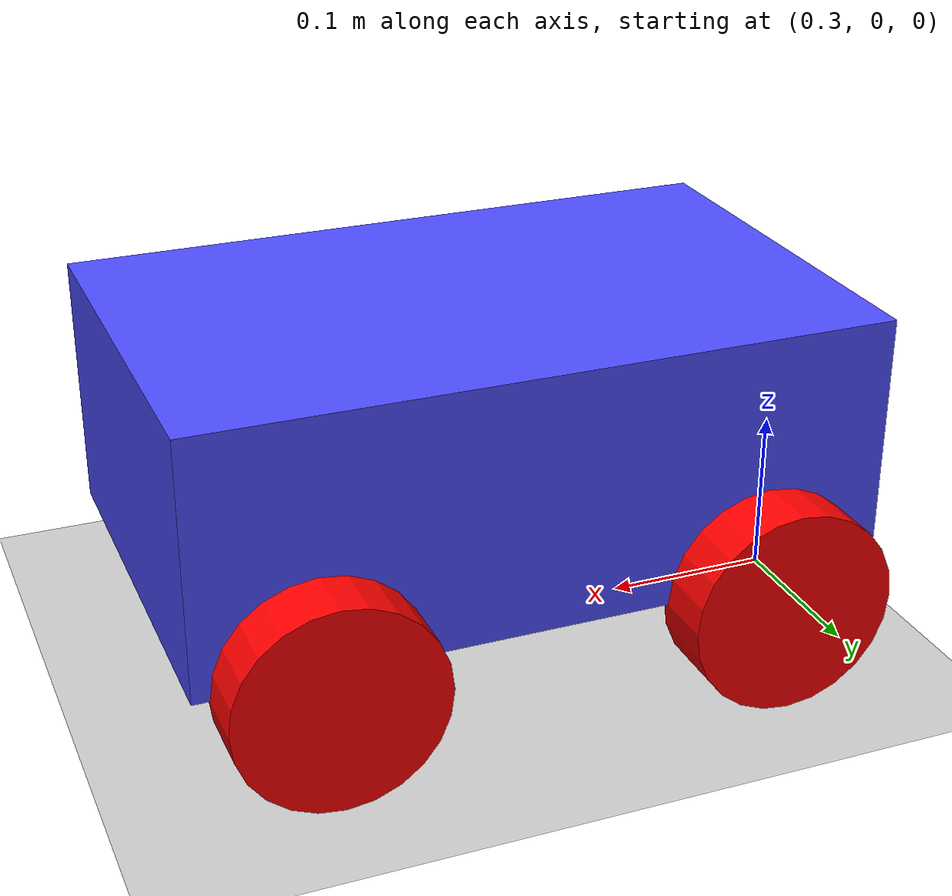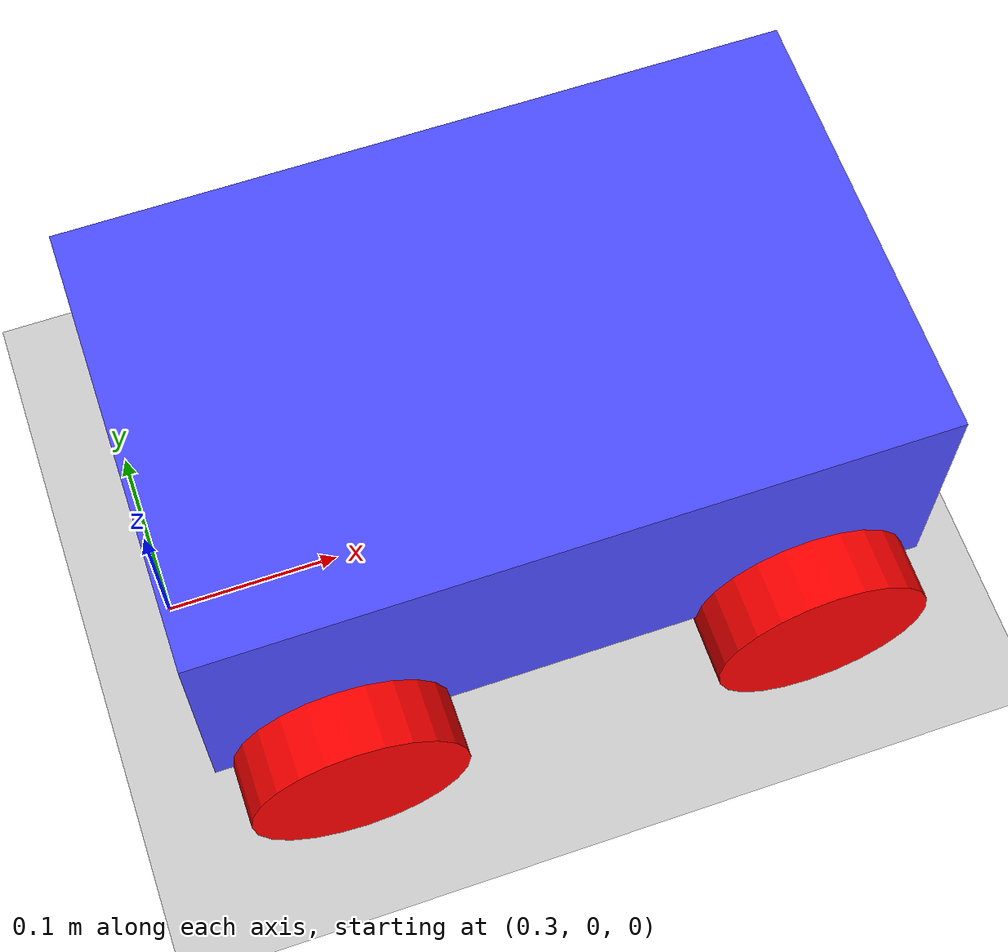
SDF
<?xml version="1.0" ?>
<sdf version="1.10">
    <world name="car_world">
        <physics type="ode">
            <max_step_size>0.001</max_step_size>
            <real_time_update_rate>1000</real_time_update_rate>
            <ode>
                <solver>
                    <iters>150</iters>
                </solver>
            </ode>
        </physics>
        <plugin
            filename="gz-sim-physics-system"
            name="gz::sim::systems::Physics">
        </plugin>
        <plugin
            filename="gz-sim-user-commands-system"
            name="gz::sim::systems::UserCommands">
        </plugin>
        <plugin
            filename="gz-sim-scene-broadcaster-system"
            name="gz::sim::systems::SceneBroadcaster">
        </plugin>

        <light type="directional" name="sun">
            <cast_shadows>true</cast_shadows>
            <pose>0 0 10 0 0 0</pose>
            <diffuse>0.8 0.8 0.8 1</diffuse>
            <specular>0.2 0.2 0.2 1</specular>
            <attenuation>
                <range>1000</range>
                <constant>0.9</constant>
                <linear>0.01</linear>
                <quadratic>0.001</quadratic>
            </attenuation>
            <direction>-0.5 0.1 -0.9</direction>
        </light>

        <model name="ground_plane">
            <static>true</static>
            <link name="link">
                <collision name="collision">
                    <geometry>
                        <plane>
                            <normal>0 0 1</normal>
                        </plane>
                    </geometry>
                </collision>
                <visual name="visual">
                    <geometry>
                        <plane>
                            <normal>0 0 1</normal>
                            <size>100 100</size>
                        </plane>
                    </geometry>
                    <material>
                        <ambient>0.8 0.8 0.8 1</ambient>
                        <diffuse>0.8 0.8 0.8 1</diffuse>
                        <specular>0.8 0.8 0.8 1</specular>
                    </material>
                </visual>
            </link>
        </model>

        <model name='arabam' canonical_link='chassis'>
            <pose relative_to='world'>0.5 0 0.14 0 0 0</pose>

            <link name='chassis'>
                <pose relative_to='__model__'>0 0 0 0 0 0</pose>
                <inertial>
                    <mass>1.5</mass>
                    <inertia>
                        <ixx>0.0146</ixx>
                        <iyy>0.0479</iyy>
                        <izz>0.0521</izz>
                        <ixy>0</ixy>
                        <ixz>0</ixz>
                        <iyz>0</iyz>
                    </inertia>
                </inertial>
                <visual name='visual'>
                    <geometry>
                        <box>
                            <size>0.4 0.25 0.15</size>
                        </box>
                    </geometry>
                    <material>
                        <ambient>0.3 0.3 1.0 1</ambient>
                        <diffuse>0.3 0.3 1.0 1</diffuse>
                    </material>
                </visual>
                <collision name='collision'>
                    <geometry>
                        <box>
                            <size>0.4 0.25 0.15</size>
                        </box>
                    </geometry>
                </collision>
            </link>

            <link name='right_wheel'>
                <pose relative_to='chassis'>0.13 -0.14 -0.075 -1.5707 0 0</pose>
                <inertial>
                    <mass>0.15</mass>
                    <inertia>
                        <ixx>0.000203</ixx>
                        <iyy>0.000203</iyy>
                        <izz>0.000338</izz>
                        <ixy>0</ixy>
                        <ixz>0</ixz>
                        <iyz>0</iyz>
                    </inertia>
                </inertial>
                <visual name='visual'>
                    <geometry>
                        <cylinder>
                            <radius>0.06</radius>
                            <length>0.04</length>
                        </cylinder>
                    </geometry>
                    <material>
                        <ambient>1.0 0.0 0.0 1</ambient>
                        <diffuse>1.0 0.0 0.0 1</diffuse>
                        <specular>1.0 0.0 0.0 1</specular>
                    </material>
                </visual>
                <collision name='collision'>
                    <geometry>
                        <cylinder>
                            <radius>0.06</radius>
                            <length>0.04</length>
                        </cylinder>
                    </geometry>
                    <surface>
                        <friction>
                            <ode>
                                <mu>1.0</mu>
                                <mu2>1.0</mu2>
                            </ode>
                        </friction>
                    </surface>
                </collision>
            </link>

            <link name='right_wheel_front'>
                <pose relative_to='chassis'>-0.13 -0.14 -0.075 -1.5707 0 0</pose>
                <inertial>
                    <mass>0.15</mass>
                    <inertia>
                        <ixx>0.000203</ixx>
                        <iyy>0.000203</iyy>
                        <izz>0.000338</izz>
                        <ixy>0</ixy>
                        <ixz>0</ixz>
                        <iyz>0</iyz>
                    </inertia>
                </inertial>
                <visual name='visual'>
                    <geometry>
                        <cylinder>
                            <radius>0.06</radius>
                            <length>0.04</length>
                        </cylinder>
                    </geometry>
                    <material>
                        <ambient>1.0 0.0 0.0 1</ambient>
                        <diffuse>1.0 0.0 0.0 1</diffuse>
                        <specular>1.0 0.0 0.0 1</specular>
                    </material>
                </visual>
                <collision name='collision'>
                    <geometry>
                        <cylinder>
                            <radius>0.06</radius>
                            <length>0.04</length>
                        </cylinder>
                    </geometry>
                    <surface>
                        <friction>
                            <ode>
                                <mu>1.0</mu>
                                <mu2>1.0</mu2>
                            </ode>
                        </friction>
                    </surface>
                </collision>
            </link>

            <link name='left_wheel'>
                <pose relative_to='chassis'>0.13 0.14 -0.075 -1.5707 0 0</pose>
                <inertial>
                    <mass>0.15</mass>
                    <inertia>
                        <ixx>0.000203</ixx>
                        <iyy>0.000203</iyy>
                        <izz>0.000338</izz>
                        <ixy>0</ixy>
                        <ixz>0</ixz>
                        <iyz>0</iyz>
                    </inertia>
                </inertial>
                <visual name='visual'>
                    <geometry>
                        <cylinder>
                            <radius>0.06</radius>
                            <length>0.04</length>
                        </cylinder>
                    </geometry>
                    <material>
                        <ambient>1.0 0.0 0.0 1</ambient>
                        <diffuse>1.0 0.0 0.0 1</diffuse>
                        <specular>1.0 0.0 0.0 1</specular>
                    </material>
                </visual>
                <collision name='collision'>
                    <geometry>
                        <cylinder>
                            <radius>0.06</radius>
                            <length>0.04</length>
                        </cylinder>
                    </geometry>
                    <surface>
                        <friction>
                            <ode>
                                <mu>1.0</mu>
                                <mu2>1.0</mu2>
                            </ode>
                        </friction>
                    </surface>
                </collision>
            </link>

            <link name='left_wheel_front'>
                <pose relative_to='chassis'>-0.13 0.14 -0.075 -1.5707 0 0</pose>
                <inertial>
                    <mass>0.15</mass>
                    <inertia>
                        <ixx>0.000203</ixx>
                        <iyy>0.000203</iyy>
                        <izz>0.000338</izz>
                        <ixy>0</ixy>
                        <ixz>0</ixz>
                        <iyz>0</iyz>
                    </inertia>
                </inertial>
                <visual name='visual'>
                    <geometry>
                        <cylinder>
                            <radius>0.06</radius>
                            <length>0.04</length>
                        </cylinder>
                    </geometry>
                    <material>
                        <ambient>1.0 0.0 0.0 1</ambient>
                        <diffuse>1.0 0.0 0.0 1</diffuse>
                        <specular>1.0 0.0 0.0 1</specular>
                    </material>
                </visual>
                <collision name='collision'>
                    <geometry>
                        <cylinder>
                            <radius>0.06</radius>
                            <length>0.04</length>
                        </cylinder>
                    </geometry>
                    <surface>
                        <friction>
                            <ode>
                                <mu>1.0</mu>
                                <mu2>1.0</mu2>
                            </ode>
                        </friction>
                    </surface>
                </collision>
            </link>

            <joint name='left_wheel_joint' type='revolute'>
                <pose relative_to='left_wheel'/>
                <parent>chassis</parent>
                <child>left_wheel</child>
                <axis>
                    <xyz expressed_in='__model__'>0 1 0</xyz>
                    <limit>
                        <lower>-1.79769e+308</lower>
                        <upper>1.79769e+308</upper>
                    </limit>
                    <dynamics>
                        <damping>0.1</damping>
                    </dynamics>
                </axis>
            </joint>

            <joint name='left_wheel_front_joint' type='revolute'>
                <pose relative_to='left_wheel_front'/>
                <parent>chassis</parent>
                <child>left_wheel_front</child>
                <axis>
                    <xyz expressed_in='__model__'>0 1 0</xyz>
                    <limit>
                        <lower>-1.79769e+308</lower>
                        <upper>1.79769e+308</upper>
                    </limit>
                    <dynamics>
                        <damping>0.1</damping>
                    </dynamics>
                </axis>
            </joint>

            <joint name='right_wheel_joint' type='revolute'>
                <pose relative_to='right_wheel'/>
                <parent>chassis</parent>
                <child>right_wheel</child>
                <axis>
                    <xyz expressed_in='__model__'>0 1 0</xyz>
                    <limit>
                        <lower>-1.79769e+308</lower>
                        <upper>1.79769e+308</upper>
                    </limit>
                    <dynamics>
                        <damping>0.1</damping>
                    </dynamics>
                </axis>
            </joint>

            <joint name='right_wheel_joint_front' type='revolute'>
                <pose relative_to='right_wheel_front'/>
                <parent>chassis</parent>
                <child>right_wheel_front</child>
                <axis>
                    <xyz expressed_in='__model__'>0 1 0</xyz>
                    <limit>
                        <lower>-1.79769e+308</lower>
                        <upper>1.79769e+308</upper>
                    </limit>
                    <dynamics>
                        <damping>0.1</damping>
                    </dynamics>
                </axis>
            </joint>

            <plugin
                filename="gz-sim-diff-drive-system"
                name="gz::sim::systems::DiffDrive">
                <left_joint>left_wheel_joint</left_joint>
                <left_joint>left_wheel_front_joint</left_joint>
                <right_joint>right_wheel_joint</right_joint>
                <right_joint>right_wheel_joint_front</right_joint>
                <wheel_separation>0.28</wheel_separation>
                <wheel_radius>0.06</wheel_radius>
                <odom_publish_frequency>50</odom_publish_frequency>
                <topic>cmd_vel</topic>
            </plugin>

        </model>
    </world>
</sdf>
